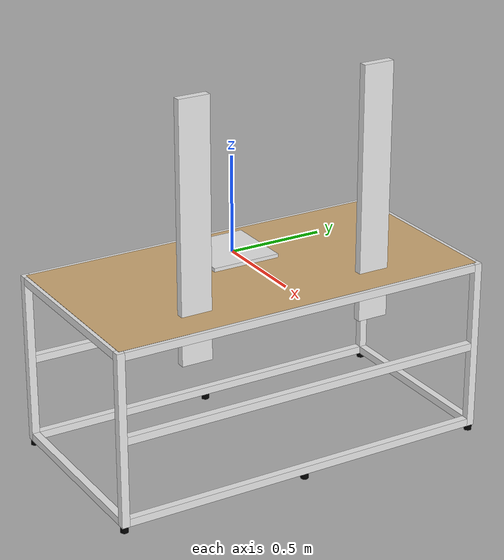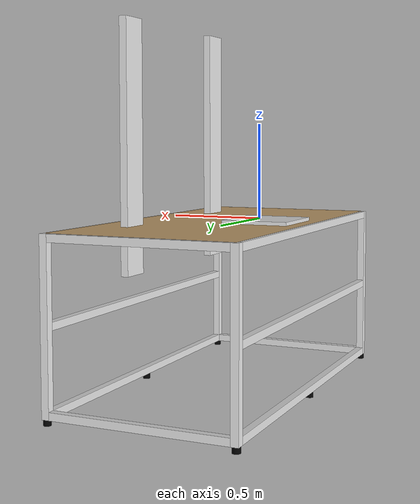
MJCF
<mujoco model="PandaFrame">
    <worldbody>
        <body name="table_plane" pos="0.2 0 -0.02">
            <geom type="box" size="0.49 0.98 0.001" rgba="0.8 0.655 0.45 1" solimp="0.999 0.999 0.001"
                  solref="0.002 1"/>

            <body name="panda_ground" pos="-0.24 0 0.01">
            <geom type="box" size="0.18 0.18 0.01" rgba=".9 .9 .9 1"/>
            </body>

            <body name="front_upper" pos="0.49 0 -0.02">
            <geom type="box" size="0.02 0.96 0.02" rgba=".9 .9 .9 1"/>
            </body>
            <body name="front_mid" pos="0.49 0 -0.445">
            <geom type="box" size="0.02 0.96 0.02" rgba=".9 .9 .9 1"/>
            </body>
            <body name="front_lower" pos="0.49 0 -0.87">
            <geom type="box" size="0.02 0.96 0.02" rgba=".9 .9 .9 1"/>
            </body>

            <body name="back_upper" pos="-0.49 0 -0.02">
            <geom type="box" size="0.02 0.96 0.02" rgba=".9 .9 .9 1"/>
            </body>
            <body name="back_mid" pos="-0.49 0 -0.445">
            <geom type="box" size="0.02 0.96 0.02" rgba=".9 .9 .9 1"/>
            </body>
            <body name="back_lower" pos="-0.49 0 -0.87">
            <geom type="box" size="0.02 0.96 0.02" rgba=".9 .9 .9 1"/>
            </body>

            <body name="vert_front_left" pos="0.49 0.98 -0.445">
            <geom type="box" size="0.02 0.02 0.445" rgba=".9 .9 .9 1"/>
            </body>
            <body name="vert_front_right" pos="0.49 -0.98 -0.445">
            <geom type="box" size="0.02 0.02 0.445" rgba=".9 .9 .9 1"/>
            </body>
            <body name="vert_back_left" pos="-0.49 0.98 -0.445">
            <geom type="box" size="0.02 0.02 0.445" rgba=".9 .9 .9 1"/>
            </body>
            <body name="vert_back_right" pos="-0.49 -0.98 -0.445">
            <geom type="box" size="0.02 0.02 0.445" rgba=".9 .9 .9 1"/>
            </body>

            <body name="side_upper_right" pos="0 -0.98 -0.02">
            <geom type="box" size="0.47 0.02 0.02" rgba=".9 .9 .9 1"/>
            </body>
            <body name="side_lower_right" pos="0 -0.98 -0.87">
            <geom type="box" size="0.47 0.02 0.02" rgba=".9 .9 .9 1"/>
            </body>

            <body name="side_upper_left" pos="0 0.98 -0.02">
            <geom type="box" size="0.47 0.02 0.02" rgba=".9 .9 .9 1"/>
            </body>
            <body name="side_lower_left" pos="0 0.98 -0.87">
            <geom type="box" size="0.47 0.02 0.02" rgba=".9 .9 .9 1"/>
            </body>

            <body name="foot_front_left" pos="0.49 0.98 -0.9">
            <geom type="cylinder" size="0.02 0.02 0.04" rgba="0 0 0 1"/>
            </body>
            <body name="foot_front_mid" pos="0.49 0 -0.9">
            <geom type="cylinder" size="0.02 0.02 0.04" rgba="0 0 0 1"/>
            </body>
            <body name="foot_front_right" pos="0.49 -0.98 -0.9">
            <geom type="cylinder" size="0.02 0.02 0.04" rgba="0 0 0 1"/>
            </body>

            <body name="foot_back_left" pos="-0.49 0.98 -0.9">
            <geom type="cylinder" size="0.02 0.02 0.04" rgba="0 0 0 1"/>
            </body>
            <body name="foot_back_mid" pos="-0.49 0 -0.9">
            <geom type="cylinder" size="0.02 0.02 0.04" rgba="0 0 0 1"/>
            </body>
            <body name="foot_back_right" pos="-0.49 -0.98 -0.9">
            <geom type="cylinder" size="0.02 0.02 0.04" rgba="0 0 0 1"/>
            </body>

            <!-- Obstacles -->
            <body name="top_obstacle_left" pos="0.3 0.49 0.4">
            <geom type="box" size="0.02 0.08 0.65" rgba=".9 .9 .9 1"/>
            </body>
            <body name="top_obstacle_right" pos="0.3 -0.49 0.4">
            <geom type="box" size="0.02 0.08 0.65" rgba=".9 .9 .9 1"/>
            </body>
            <!-- End Obstacles -->

            <body name="support_body" pos="0 0 -0.4" >
            <geom type="box" size="0.49 0.98 0.4" rgba="0 0 0 0" solimp="0.999  0.999 0.001" solref="0.002 1"/>
            </body>
        </body>
    </worldbody>
</mujoco>
